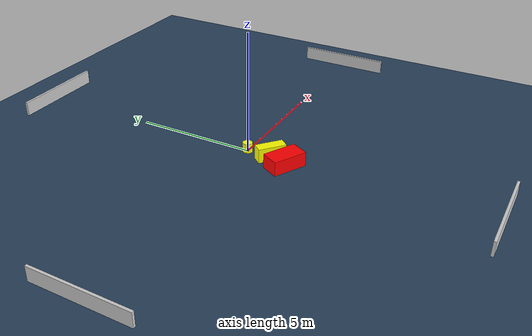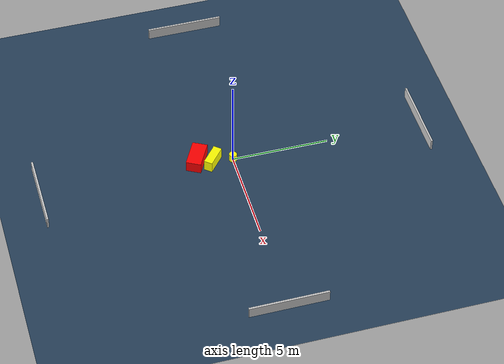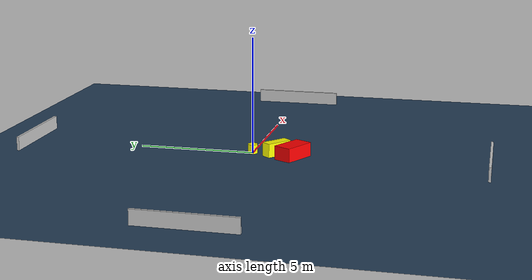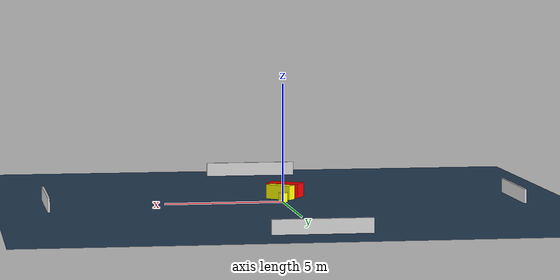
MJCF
<?xml version="1.0" ?>
<mujoco model="generated_environment">
  <option timestep="0.01" integrator="RK4" cone="elliptic"/>
  <default>
    <geom density="1"/>
  </default>
  <asset>
    <texture builtin="gradient" height="3072" name="skybox" rgb1="0.3 0.5 0.7" rgb2="0 0 0" type="skybox" width="512"/>
    <texture builtin="checker" height="300" name="groundplane" rgb1="0.2 0.3 0.4" rgb2="0.1 0.2 0.3" type="2d" width="300"/>
    <material name="groundplane" reflectance="0.2" texrepeat="5 5" texture="groundplane"/>
  </asset>
  <worldbody>
    <light dir="0 0 -1" directional="true" pos="0 0 1.5"/>
    <geom condim="3" friction="0.5 0.005 0.001" material="groundplane" name="floor" pos="0 0 0" size="0 0 0.05" type="plane"/>
    <body name="walls">
      <geom name="wall_1" condim="4" pos="-10.0 0.0 0.3" rgba="0.800000011920929 0.800000011920929 0.800000011920929 1.0" size="0.05 2.0 0.3" type="box"/>
      <geom name="wall_2" condim="4" pos="10.0 0.0 0.3" rgba="0.800000011920929 0.800000011920929 0.800000011920929 1.0" size="0.05 2.0 0.3" type="box"/>
      <geom name="wall_3" condim="4" pos="0.0 -10.0 0.3" rgba="0.800000011920929 0.800000011920929 0.800000011920929 1.0" size="2.0 0.05 0.3" type="box"/>
      <geom name="wall_4" condim="4" pos="0.0 10.0 0.3" rgba="0.800000011920929 0.800000011920929 0.800000011920929 1.0" size="2.0 0.05 0.3" type="box"/>
    </body>
    <body name="robot">
      <joint name="joint_x" type="slide" pos="0 0 0" axis="1 0 0"/>
      <joint name="joint_y" type="slide" pos="0 0 0" axis="0 1 0"/>
      <geom name="robot" type="cylinder" pos="0.0 0.0 0.2" size="0.2 0.2 0.0" mass="5.0" friction="1.0 0.005 0.0001" condim="4" rgba="1.0 1.0 0.0 1.0"/>
    </body>
    <body name="obstacle_1_movable">
      <geom name="obstacle_1_movable" condim="4" pos="-0.03987767252339844 -1.0491647523010643 0.3" euler="0 0 49.99145437134731" friction="0.0 0.005 0.001" rgba="1.0 1.0 0.0 1.0" size="0.2193768204676213 0.5839083839977712 0.3" type="box" mass="0.1"/>
      <joint type="free"/>
    </body>
    <body name="obstacle_2_static">
      <geom name="obstacle_2_static" condim="4" pos="-0.3493900867674638 -1.8173886393253345 0.3" euler="0 0 61.897527366031625" friction="0.0 0.005 0.001" rgba="1.0 0.0 0.0 1.0" size="0.3877399539104188 0.7193109019144952 0.3" type="box"/>
    </body>
  </worldbody>
  <actuator>
    <motor name="actuator_x" joint="joint_x" gear="1" ctrlrange="-1 1"/>
    <motor name="actuator_y" joint="joint_y" gear="1" ctrlrange="-1 1"/>
  </actuator>
</mujoco>
